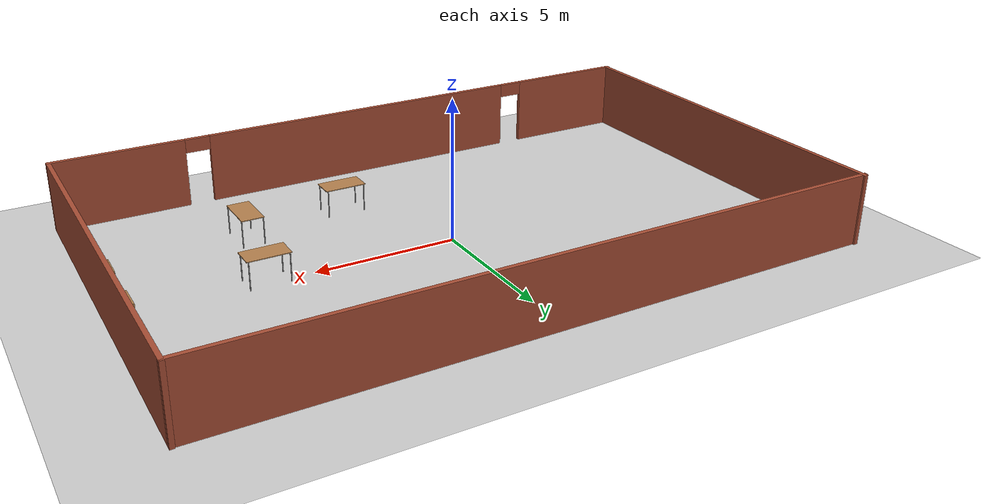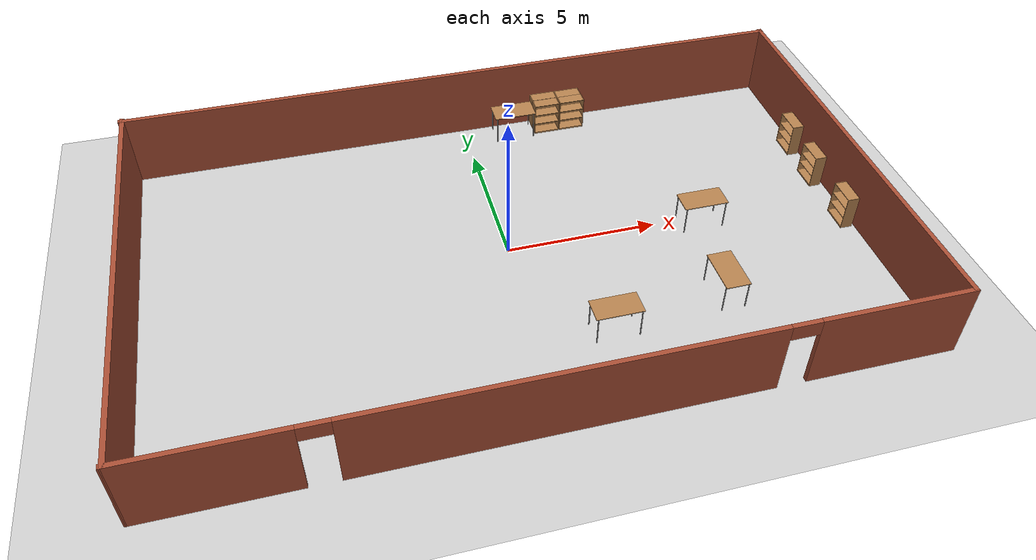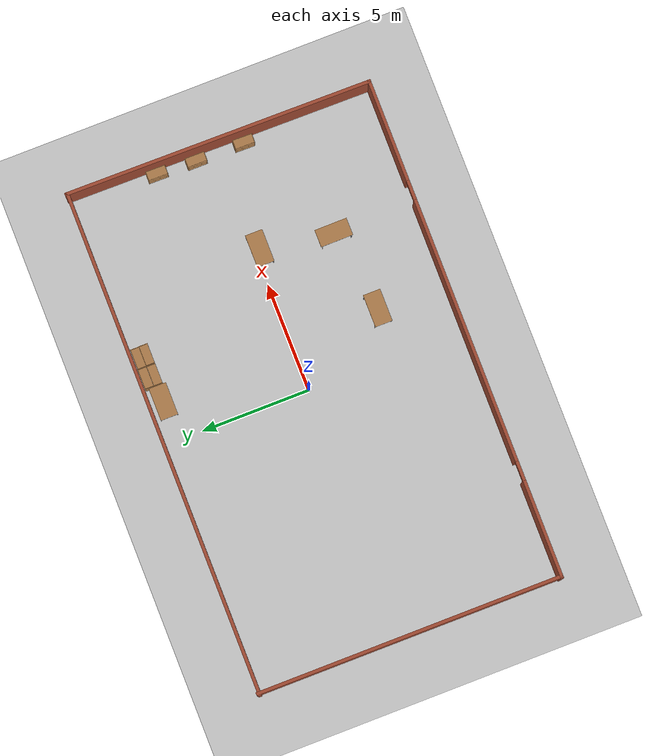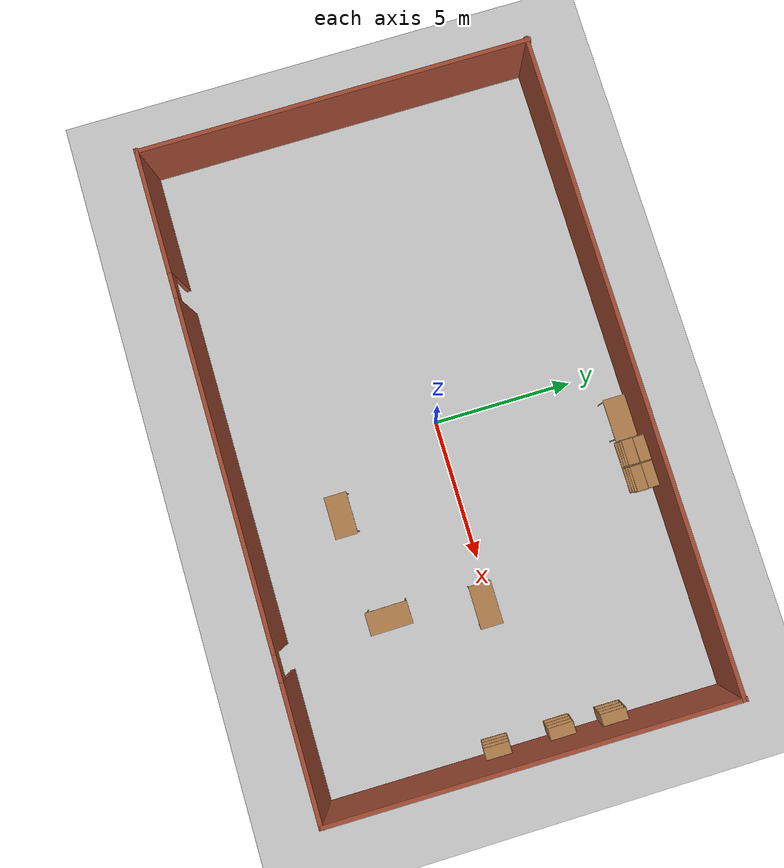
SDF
<sdf version="1.7">
 <world name="default">
  <model name="ground_plane">
   <static>1</static>
   <link name="link">
    <collision name="collision">
     <geometry><plane><normal>0 0 1</normal><size>100 100</size></plane></geometry>
     <surface><friction><ode><mu>100</mu><mu2>50</mu2></ode></friction></surface>
    </collision>
    <visual name="visual">
     <cast_shadows>0</cast_shadows>
     <geometry><plane><normal>0 0 1</normal><size>100 100</size></plane></geometry>
     <material>
      <script><uri>file://media/materials/scripts/gazebo.material</uri><name>Gazebo/Grey</name></script>
     </material>
    </visual>
   </link>
  </model>
  <model name="lab_experimental">
   <pose>-0.043326 -0.210443 0 0 -0 0</pose>
   <link name="Wall_0">
    <collision name="Wall_0_Collision">
     <geometry><box><size>23.5 0.15 2.5</size></box></geometry>
     <pose>0 0 1.25 0 -0 0</pose>
    </collision>
    <visual name="Wall_0_Visual">
     <pose>0 0 1.25 0 -0 0</pose>
     <geometry><box><size>23.5 0.15 2.5</size></box></geometry>
     <material>
      <script><uri>file://media/materials/scripts/gazebo.material</uri><name>Gazebo/Bricks</name></script>
      <ambient>1 1 1 1</ambient>
     </material>
     <meta><layer>0</layer></meta>
    </visual>
    <pose>-0.000322 7.01118 0 0 -0 0</pose>
   </link>
   <link name="Wall_1">
    <collision name="Wall_1_Collision">
     <geometry><box><size>14.2319 0.15 2.5</size></box></geometry>
     <pose>0 0 1.25 0 -0 0</pose>
    </collision>
    <visual name="Wall_1_Visual">
     <pose>0 0 1.25 0 -0 0</pose>
     <geometry><box><size>14.2319 0.15 2.5</size></box></geometry>
     <material>
      <script><uri>file://media/materials/scripts/gazebo.material</uri><name>Gazebo/Bricks</name></script>
      <ambient>1 1 1 1</ambient>
     </material>
     <meta><layer>0</layer></meta>
    </visual>
    <pose>11.614 0.010965 0 0 -0 -1.57942</pose>
   </link>
   <link name="Wall_2">
    <pose>-0.053739 -7.04993 0 0 -0 3.13985</pose>
    <visual name="Wall_2_Visual_0">
     <pose>-9.30831 0 1.25 0 -0 0</pose>
     <geometry><box><size>4.74763 0.15 2.5</size></box></geometry>
     <material>
      <script><uri>file://media/materials/scripts/gazebo.material</uri><name>Gazebo/Bricks</name></script>
      <ambient>1 1 1 1</ambient>
     </material>
     <meta><layer>0</layer></meta>
    </visual>
    <collision name="Wall_2_Collision_0">
     <geometry><box><size>4.74763 0.15 2.5</size></box></geometry>
     <pose>-9.30831 0 1.25 0 -0 0</pose>
    </collision>
    <visual name="Wall_2_Visual_1">
     <pose>0.091294 0 1.25 0 -0 0</pose>
     <geometry><box><size>12.2516 0.15 2.5</size></box></geometry>
     <material>
      <script><uri>file://media/materials/scripts/gazebo.material</uri><name>Gazebo/Bricks</name></script>
      <ambient>1 1 1 1</ambient>
     </material>
     <meta><layer>0</layer></meta>
    </visual>
    <collision name="Wall_2_Collision_1">
     <geometry><box><size>12.2516 0.15 2.5</size></box></geometry>
     <pose>0.091294 0 1.25 0 -0 0</pose>
    </collision>
    <visual name="Wall_2_Visual_2">
     <pose>9.3996 0 1.25 0 -0 0</pose>
     <geometry><box><size>4.56504 0.15 2.5</size></box></geometry>
     <material>
      <script><uri>file://media/materials/scripts/gazebo.material</uri><name>Gazebo/Bricks</name></script>
      <ambient>1 1 1 1</ambient>
     </material>
     <meta><layer>0</layer></meta>
    </visual>
    <collision name="Wall_2_Collision_2">
     <geometry><box><size>4.56504 0.15 2.5</size></box></geometry>
     <pose>9.3996 0 1.25 0 -0 0</pose>
    </collision>
    <visual name="Wall_2_Visual_3">
     <pose>-6.48449 0 2.25 0 -0 0</pose>
     <geometry><box><size>0.9 0.15 0.5</size></box></geometry>
     <material>
      <script><uri>file://media/materials/scripts/gazebo.material</uri><name>Gazebo/Bricks</name></script>
      <ambient>1 1 1 1</ambient>
     </material>
     <meta><layer>0</layer></meta>
    </visual>
    <collision name="Wall_2_Collision_3">
     <geometry><box><size>0.9 0.15 0.5</size></box></geometry>
     <pose>-6.48449 0 2.25 0 -0 0</pose>
    </collision>
    <visual name="Wall_2_Visual_4">
     <pose>6.66708 0 2.25 0 -0 0</pose>
     <geometry><box><size>0.9 0.15 0.5</size></box></geometry>
     <material>
      <script><uri>file://media/materials/scripts/gazebo.material</uri><name>Gazebo/Bricks</name></script>
      <ambient>1 1 1 1</ambient>
     </material>
     <meta><layer>0</layer></meta>
    </visual>
    <collision name="Wall_2_Collision_4">
     <geometry><box><size>0.9 0.15 0.5</size></box></geometry>
     <pose>6.66708 0 2.25 0 -0 0</pose>
    </collision>
   </link>
   <link name="Wall_3">
    <collision name="Wall_3_Collision">
     <geometry><box><size>14.25 0.15 2.5</size></box></geometry>
     <pose>0 0 1.25 0 -0 0</pose>
    </collision>
    <visual name="Wall_3_Visual">
     <pose>0 0 1.25 0 -0 0</pose>
     <geometry><box><size>14.25 0.15 2.5</size></box></geometry>
     <material>
      <script><uri>file://media/materials/scripts/gazebo.material</uri><name>Gazebo/Bricks</name></script>
      <ambient>1 1 1 1</ambient>
     </material>
     <meta><layer>0</layer></meta>
    </visual>
    <pose>-11.6203 0.020293 0 0 -0 1.5708</pose>
   </link>
   <static>1</static>
  </model>
  <model name="bookshelf_clone">
   <static>1</static>
   <link name="link">
    <inertial><mass>1</mass></inertial>
    <collision name="back">
     <pose>0 0.005 0.6 0 -0 0</pose>
     <geometry><box><size>0.9 0.01 1.2</size></box></geometry>
    </collision>
    <visual name="visual1">
     <pose>0 0.005 0.6 0 -0 0</pose>
     <geometry><box><size>0.9 0.01 1.2</size></box></geometry>
     <material>
      <script><uri>file://media/materials/scripts/gazebo.material</uri><name>Gazebo/Wood</name></script>
     </material>
    </visual>
    <collision name="left_side">
     <pose>0.45 -0.195 0.6 0 -0 0</pose>
     <geometry><box><size>0.02 0.4 1.2</size></box></geometry>
    </collision>
    <visual name="visual2">
     <pose>0.45 -0.195 0.6 0 -0 0</pose>
     <geometry><box><size>0.02 0.4 1.2</size></box></geometry>
     <material>
      <script><uri>file://media/materials/scripts/gazebo.material</uri><name>Gazebo/Wood</name></script>
     </material>
    </visual>
    <collision name="right_side">
     <pose>-0.45 -0.195 0.6 0 -0 0</pose>
     <geometry><box><size>0.02 0.4 1.2</size></box></geometry>
    </collision>
    <visual name="visual3">
     <pose>-0.45 -0.195 0.6 0 -0 0</pose>
     <geometry><box><size>0.02 0.4 1.2</size></box></geometry>
     <material>
      <script><uri>file://media/materials/scripts/gazebo.material</uri><name>Gazebo/Wood</name></script>
     </material>
    </visual>
    <collision name="bottom">
     <pose>0 -0.195 0.03 0 -0 0</pose>
     <geometry><box><size>0.88 0.4 0.06</size></box></geometry>
    </collision>
    <visual name="visual4">
     <pose>0 -0.195 0.03 0 -0 0</pose>
     <geometry><box><size>0.88 0.4 0.06</size></box></geometry>
     <material>
      <script><uri>file://media/materials/scripts/gazebo.material</uri><name>Gazebo/Wood</name></script>
     </material>
    </visual>
    <collision name="top">
     <pose>0 -0.195 1.19 0 -0 0</pose>
     <geometry><box><size>0.88 0.4 0.02</size></box></geometry>
    </collision>
    <visual name="visual5">
     <pose>0 -0.195 1.19 0 -0 0</pose>
     <geometry><box><size>0.88 0.4 0.02</size></box></geometry>
     <material>
      <script><uri>file://media/materials/scripts/gazebo.material</uri><name>Gazebo/Wood</name></script>
     </material>
    </visual>
    <collision name="low_shelf">
     <pose>0 -0.195 0.43 0 -0 0</pose>
     <geometry><box><size>0.88 0.4 0.02</size></box></geometry>
    </collision>
    <visual name="visual6">
     <pose>0 -0.195 0.43 0 -0 0</pose>
     <geometry><box><size>0.88 0.4 0.02</size></box></geometry>
     <material>
      <script><uri>file://media/materials/scripts/gazebo.material</uri><name>Gazebo/Wood</name></script>
     </material>
    </visual>
    <collision name="high_shelf">
     <pose>0 -0.195 0.8 0 -0 0</pose>
     <geometry><box><size>0.88 0.4 0.02</size></box></geometry>
    </collision>
    <visual name="visual7">
     <pose>0 -0.195 0.8 0 -0 0</pose>
     <geometry><box><size>0.88 0.4 0.02</size></box></geometry>
     <material>
      <script><uri>file://media/materials/scripts/gazebo.material</uri><name>Gazebo/Wood</name></script>
     </material>
    </visual>
   </link>
   <pose>11.3923 -1.25194 0 0 0 -1.58716</pose>
  </model>
  <model name="bookshelf_clone_0">
   <static>1</static>
   <link name="link">
    <inertial><mass>1</mass></inertial>
    <collision name="back">
     <pose>0 0.005 0.6 0 -0 0</pose>
     <geometry><box><size>0.9 0.01 1.2</size></box></geometry>
    </collision>
    <visual name="visual1">
     <pose>0 0.005 0.6 0 -0 0</pose>
     <geometry><box><size>0.9 0.01 1.2</size></box></geometry>
     <material>
      <script><uri>file://media/materials/scripts/gazebo.material</uri><name>Gazebo/Wood</name></script>
     </material>
    </visual>
    <collision name="left_side">
     <pose>0.45 -0.195 0.6 0 -0 0</pose>
     <geometry><box><size>0.02 0.4 1.2</size></box></geometry>
    </collision>
    <visual name="visual2">
     <pose>0.45 -0.195 0.6 0 -0 0</pose>
     <geometry><box><size>0.02 0.4 1.2</size></box></geometry>
     <material>
      <script><uri>file://media/materials/scripts/gazebo.material</uri><name>Gazebo/Wood</name></script>
     </material>
    </visual>
    <collision name="right_side">
     <pose>-0.45 -0.195 0.6 0 -0 0</pose>
     <geometry><box><size>0.02 0.4 1.2</size></box></geometry>
    </collision>
    <visual name="visual3">
     <pose>-0.45 -0.195 0.6 0 -0 0</pose>
     <geometry><box><size>0.02 0.4 1.2</size></box></geometry>
     <material>
      <script><uri>file://media/materials/scripts/gazebo.material</uri><name>Gazebo/Wood</name></script>
     </material>
    </visual>
    <collision name="bottom">
     <pose>0 -0.195 0.03 0 -0 0</pose>
     <geometry><box><size>0.88 0.4 0.06</size></box></geometry>
    </collision>
    <visual name="visual4">
     <pose>0 -0.195 0.03 0 -0 0</pose>
     <geometry><box><size>0.88 0.4 0.06</size></box></geometry>
     <material>
      <script><uri>file://media/materials/scripts/gazebo.material</uri><name>Gazebo/Wood</name></script>
     </material>
    </visual>
    <collision name="top">
     <pose>0 -0.195 1.19 0 -0 0</pose>
     <geometry><box><size>0.88 0.4 0.02</size></box></geometry>
    </collision>
    <visual name="visual5">
     <pose>0 -0.195 1.19 0 -0 0</pose>
     <geometry><box><size>0.88 0.4 0.02</size></box></geometry>
     <material>
      <script><uri>file://media/materials/scripts/gazebo.material</uri><name>Gazebo/Wood</name></script>
     </material>
    </visual>
    <collision name="low_shelf">
     <pose>0 -0.195 0.43 0 -0 0</pose>
     <geometry><box><size>0.88 0.4 0.02</size></box></geometry>
    </collision>
    <visual name="visual6">
     <pose>0 -0.195 0.43 0 -0 0</pose>
     <geometry><box><size>0.88 0.4 0.02</size></box></geometry>
     <material>
      <script><uri>file://media/materials/scripts/gazebo.material</uri><name>Gazebo/Wood</name></script>
     </material>
    </visual>
    <collision name="high_shelf">
     <pose>0 -0.195 0.8 0 -0 0</pose>
     <geometry><box><size>0.88 0.4 0.02</size></box></geometry>
    </collision>
    <visual name="visual7">
     <pose>0 -0.195 0.8 0 -0 0</pose>
     <geometry><box><size>0.88 0.4 0.02</size></box></geometry>
     <material>
      <script><uri>file://media/materials/scripts/gazebo.material</uri><name>Gazebo/Wood</name></script>
     </material>
    </visual>
   </link>
   <pose>11.3961 0.993662 0 0 0 -1.57121</pose>
  </model>
  <model name="bookshelf_clone_1">
   <static>1</static>
   <link name="link">
    <inertial><mass>1</mass></inertial>
    <collision name="back">
     <pose>0 0.005 0.6 0 -0 0</pose>
     <geometry><box><size>0.9 0.01 1.2</size></box></geometry>
    </collision>
    <visual name="visual1">
     <pose>0 0.005 0.6 0 -0 0</pose>
     <geometry><box><size>0.9 0.01 1.2</size></box></geometry>
     <material>
      <script><uri>file://media/materials/scripts/gazebo.material</uri><name>Gazebo/Wood</name></script>
     </material>
    </visual>
    <collision name="left_side">
     <pose>0.45 -0.195 0.6 0 -0 0</pose>
     <geometry><box><size>0.02 0.4 1.2</size></box></geometry>
    </collision>
    <visual name="visual2">
     <pose>0.45 -0.195 0.6 0 -0 0</pose>
     <geometry><box><size>0.02 0.4 1.2</size></box></geometry>
     <material>
      <script><uri>file://media/materials/scripts/gazebo.material</uri><name>Gazebo/Wood</name></script>
     </material>
    </visual>
    <collision name="right_side">
     <pose>-0.45 -0.195 0.6 0 -0 0</pose>
     <geometry><box><size>0.02 0.4 1.2</size></box></geometry>
    </collision>
    <visual name="visual3">
     <pose>-0.45 -0.195 0.6 0 -0 0</pose>
     <geometry><box><size>0.02 0.4 1.2</size></box></geometry>
     <material>
      <script><uri>file://media/materials/scripts/gazebo.material</uri><name>Gazebo/Wood</name></script>
     </material>
    </visual>
    <collision name="bottom">
     <pose>0 -0.195 0.03 0 -0 0</pose>
     <geometry><box><size>0.88 0.4 0.06</size></box></geometry>
    </collision>
    <visual name="visual4">
     <pose>0 -0.195 0.03 0 -0 0</pose>
     <geometry><box><size>0.88 0.4 0.06</size></box></geometry>
     <material>
      <script><uri>file://media/materials/scripts/gazebo.material</uri><name>Gazebo/Wood</name></script>
     </material>
    </visual>
    <collision name="top">
     <pose>0 -0.195 1.19 0 -0 0</pose>
     <geometry><box><size>0.88 0.4 0.02</size></box></geometry>
    </collision>
    <visual name="visual5">
     <pose>0 -0.195 1.19 0 -0 0</pose>
     <geometry><box><size>0.88 0.4 0.02</size></box></geometry>
     <material>
      <script><uri>file://media/materials/scripts/gazebo.material</uri><name>Gazebo/Wood</name></script>
     </material>
    </visual>
    <collision name="low_shelf">
     <pose>0 -0.195 0.43 0 -0 0</pose>
     <geometry><box><size>0.88 0.4 0.02</size></box></geometry>
    </collision>
    <visual name="visual6">
     <pose>0 -0.195 0.43 0 -0 0</pose>
     <geometry><box><size>0.88 0.4 0.02</size></box></geometry>
     <material>
      <script><uri>file://media/materials/scripts/gazebo.material</uri><name>Gazebo/Wood</name></script>
     </material>
    </visual>
    <collision name="high_shelf">
     <pose>0 -0.195 0.8 0 -0 0</pose>
     <geometry><box><size>0.88 0.4 0.02</size></box></geometry>
    </collision>
    <visual name="visual7">
     <pose>0 -0.195 0.8 0 -0 0</pose>
     <geometry><box><size>0.88 0.4 0.02</size></box></geometry>
     <material>
      <script><uri>file://media/materials/scripts/gazebo.material</uri><name>Gazebo/Wood</name></script>
     </material>
    </visual>
   </link>
   <pose>11.4656 2.81029 0 0 0 -1.58232</pose>
  </model>
  <model name="table_clone_clone_1">
   <static>1</static>
   <link name="link">
    <collision name="surface">
     <pose>0 0 1 0 -0 0</pose>
     <geometry><box><size>1.5 0.8 0.03</size></box></geometry>
     <surface><friction><ode><mu>0.6</mu><mu2>0.6</mu2></ode></friction></surface>
    </collision>
    <visual name="visual1">
     <pose>0 0 1 0 -0 0</pose>
     <geometry><box><size>1.5 0.8 0.03</size></box></geometry>
     <material>
      <script><uri>file://media/materials/scripts/gazebo.material</uri><name>Gazebo/Wood</name></script>
     </material>
    </visual>
    <collision name="front_left_leg">
     <pose>0.68 0.38 0.5 0 -0 0</pose>
     <geometry><cylinder><radius>0.02</radius><length>1</length></cylinder></geometry>
    </collision>
    <visual name="front_left_leg">
     <pose>0.68 0.38 0.5 0 -0 0</pose>
     <geometry><cylinder><radius>0.02</radius><length>1</length></cylinder></geometry>
     <material>
      <script><uri>file://media/materials/scripts/gazebo.material</uri><name>Gazebo/Grey</name></script>
     </material>
    </visual>
    <collision name="front_right_leg">
     <pose>0.68 -0.38 0.5 0 -0 0</pose>
     <geometry><cylinder><radius>0.02</radius><length>1</length></cylinder></geometry>
    </collision>
    <visual name="front_right_leg">
     <pose>0.68 -0.38 0.5 0 -0 0</pose>
     <geometry><cylinder><radius>0.02</radius><length>1</length></cylinder></geometry>
     <material>
      <script><uri>file://media/materials/scripts/gazebo.material</uri><name>Gazebo/Grey</name></script>
     </material>
    </visual>
    <collision name="back_right_leg">
     <pose>-0.68 -0.38 0.5 0 -0 0</pose>
     <geometry><cylinder><radius>0.02</radius><length>1</length></cylinder></geometry>
    </collision>
    <visual name="back_right_leg">
     <pose>-0.68 -0.38 0.5 0 -0 0</pose>
     <geometry><cylinder><radius>0.02</radius><length>1</length></cylinder></geometry>
     <material>
      <script><uri>file://media/materials/scripts/gazebo.material</uri><name>Gazebo/Grey</name></script>
     </material>
    </visual>
    <collision name="back_left_leg">
     <pose>-0.68 0.38 0.5 0 -0 0</pose>
     <geometry><cylinder><radius>0.02</radius><length>1</length></cylinder></geometry>
    </collision>
    <visual name="back_left_leg">
     <pose>-0.68 0.38 0.5 0 -0 0</pose>
     <geometry><cylinder><radius>0.02</radius><length>1</length></cylinder></geometry>
     <material>
      <script><uri>file://media/materials/scripts/gazebo.material</uri><name>Gazebo/Grey</name></script>
     </material>
    </visual>
   </link>
   <pose>6.02324 -3.50357 0 0 0 -1.56352</pose>
  </model>
  <model name="bookshelf_2_clone">
   <static>1</static>
   <link name="link">
    <inertial><mass>1</mass></inertial>
    <collision name="back">
     <pose>0 0.005 0.6 0 -0 0</pose>
     <geometry><box><size>0.9 0.01 1.2</size></box></geometry>
    </collision>
    <visual name="visual1">
     <pose>0 0.005 0.6 0 -0 0</pose>
     <geometry><box><size>0.9 0.01 1.2</size></box></geometry>
     <material>
      <script><uri>file://media/materials/scripts/gazebo.material</uri><name>Gazebo/Wood</name></script>
     </material>
    </visual>
    <collision name="left_side">
     <pose>0.45 -0.195 0.6 0 -0 0</pose>
     <geometry><box><size>0.02 0.4 1.2</size></box></geometry>
    </collision>
    <visual name="visual2">
     <pose>0.45 -0.195 0.6 0 -0 0</pose>
     <geometry><box><size>0.02 0.4 1.2</size></box></geometry>
     <material>
      <script><uri>file://media/materials/scripts/gazebo.material</uri><name>Gazebo/Wood</name></script>
     </material>
    </visual>
    <collision name="right_side">
     <pose>-0.45 -0.195 0.6 0 -0 0</pose>
     <geometry><box><size>0.02 0.4 1.2</size></box></geometry>
    </collision>
    <visual name="visual3">
     <pose>-0.45 -0.195 0.6 0 -0 0</pose>
     <geometry><box><size>0.02 0.4 1.2</size></box></geometry>
     <material>
      <script><uri>file://media/materials/scripts/gazebo.material</uri><name>Gazebo/Wood</name></script>
     </material>
    </visual>
    <collision name="bottom">
     <pose>0 -0.195 0.03 0 -0 0</pose>
     <geometry><box><size>0.88 0.4 0.06</size></box></geometry>
    </collision>
    <visual name="visual4">
     <pose>0 -0.195 0.03 0 -0 0</pose>
     <geometry><box><size>0.88 0.4 0.06</size></box></geometry>
     <material>
      <script><uri>file://media/materials/scripts/gazebo.material</uri><name>Gazebo/Wood</name></script>
     </material>
    </visual>
    <collision name="top">
     <pose>0 -0.195 1.19 0 -0 0</pose>
     <geometry><box><size>0.88 0.4 0.02</size></box></geometry>
    </collision>
    <visual name="visual5">
     <pose>0 -0.195 1.19 0 -0 0</pose>
     <geometry><box><size>0.88 0.4 0.02</size></box></geometry>
     <material>
      <script><uri>file://media/materials/scripts/gazebo.material</uri><name>Gazebo/Wood</name></script>
     </material>
    </visual>
    <collision name="low_shelf">
     <pose>0 -0.195 0.43 0 -0 0</pose>
     <geometry><box><size>0.88 0.4 0.02</size></box></geometry>
    </collision>
    <visual name="visual6">
     <pose>0 -0.195 0.43 0 -0 0</pose>
     <geometry><box><size>0.88 0.4 0.02</size></box></geometry>
     <material>
      <script><uri>file://media/materials/scripts/gazebo.material</uri><name>Gazebo/Wood</name></script>
     </material>
    </visual>
    <collision name="high_shelf">
     <pose>0 -0.195 0.8 0 -0 0</pose>
     <geometry><box><size>0.88 0.4 0.02</size></box></geometry>
    </collision>
    <visual name="visual7">
     <pose>0 -0.195 0.8 0 -0 0</pose>
     <geometry><box><size>0.88 0.4 0.02</size></box></geometry>
     <material>
      <script><uri>file://media/materials/scripts/gazebo.material</uri><name>Gazebo/Wood</name></script>
     </material>
    </visual>
   </link>
   <pose>2.99493 6.69161 0 0 -0 0</pose>
  </model>
  <model name="bookshelf_2_clone_0">
   <static>1</static>
   <link name="link">
    <inertial><mass>1</mass></inertial>
    <collision name="back">
     <pose>0 0.005 0.6 0 -0 0</pose>
     <geometry><box><size>0.9 0.01 1.2</size></box></geometry>
    </collision>
    <visual name="visual1">
     <pose>0 0.005 0.6 0 -0 0</pose>
     <geometry><box><size>0.9 0.01 1.2</size></box></geometry>
     <material>
      <script><uri>file://media/materials/scripts/gazebo.material</uri><name>Gazebo/Wood</name></script>
     </material>
    </visual>
    <collision name="left_side">
     <pose>0.45 -0.195 0.6 0 -0 0</pose>
     <geometry><box><size>0.02 0.4 1.2</size></box></geometry>
    </collision>
    <visual name="visual2">
     <pose>0.45 -0.195 0.6 0 -0 0</pose>
     <geometry><box><size>0.02 0.4 1.2</size></box></geometry>
     <material>
      <script><uri>file://media/materials/scripts/gazebo.material</uri><name>Gazebo/Wood</name></script>
     </material>
    </visual>
    <collision name="right_side">
     <pose>-0.45 -0.195 0.6 0 -0 0</pose>
     <geometry><box><size>0.02 0.4 1.2</size></box></geometry>
    </collision>
    <visual name="visual3">
     <pose>-0.45 -0.195 0.6 0 -0 0</pose>
     <geometry><box><size>0.02 0.4 1.2</size></box></geometry>
     <material>
      <script><uri>file://media/materials/scripts/gazebo.material</uri><name>Gazebo/Wood</name></script>
     </material>
    </visual>
    <collision name="bottom">
     <pose>0 -0.195 0.03 0 -0 0</pose>
     <geometry><box><size>0.88 0.4 0.06</size></box></geometry>
    </collision>
    <visual name="visual4">
     <pose>0 -0.195 0.03 0 -0 0</pose>
     <geometry><box><size>0.88 0.4 0.06</size></box></geometry>
     <material>
      <script><uri>file://media/materials/scripts/gazebo.material</uri><name>Gazebo/Wood</name></script>
     </material>
    </visual>
    <collision name="top">
     <pose>0 -0.195 1.19 0 -0 0</pose>
     <geometry><box><size>0.88 0.4 0.02</size></box></geometry>
    </collision>
    <visual name="visual5">
     <pose>0 -0.195 1.19 0 -0 0</pose>
     <geometry><box><size>0.88 0.4 0.02</size></box></geometry>
     <material>
      <script><uri>file://media/materials/scripts/gazebo.material</uri><name>Gazebo/Wood</name></script>
     </material>
    </visual>
    <collision name="low_shelf">
     <pose>0 -0.195 0.43 0 -0 0</pose>
     <geometry><box><size>0.88 0.4 0.02</size></box></geometry>
    </collision>
    <visual name="visual6">
     <pose>0 -0.195 0.43 0 -0 0</pose>
     <geometry><box><size>0.88 0.4 0.02</size></box></geometry>
     <material>
      <script><uri>file://media/materials/scripts/gazebo.material</uri><name>Gazebo/Wood</name></script>
     </material>
    </visual>
    <collision name="high_shelf">
     <pose>0 -0.195 0.8 0 -0 0</pose>
     <geometry><box><size>0.88 0.4 0.02</size></box></geometry>
    </collision>
    <visual name="visual7">
     <pose>0 -0.195 0.8 0 -0 0</pose>
     <geometry><box><size>0.88 0.4 0.02</size></box></geometry>
     <material>
      <script><uri>file://media/materials/scripts/gazebo.material</uri><name>Gazebo/Wood</name></script>
     </material>
    </visual>
   </link>
   <pose>2.99049 6.27829 0 0 -0 0</pose>
  </model>
  <model name="bookshelf_2_clone_1">
   <static>1</static>
   <link name="link">
    <inertial><mass>1</mass></inertial>
    <collision name="back">
     <pose>0 0.005 0.6 0 -0 0</pose>
     <geometry><box><size>0.9 0.01 1.2</size></box></geometry>
    </collision>
    <visual name="visual1">
     <pose>0 0.005 0.6 0 -0 0</pose>
     <geometry><box><size>0.9 0.01 1.2</size></box></geometry>
     <material>
      <script><uri>file://media/materials/scripts/gazebo.material</uri><name>Gazebo/Wood</name></script>
     </material>
    </visual>
    <collision name="left_side">
     <pose>0.45 -0.195 0.6 0 -0 0</pose>
     <geometry><box><size>0.02 0.4 1.2</size></box></geometry>
    </collision>
    <visual name="visual2">
     <pose>0.45 -0.195 0.6 0 -0 0</pose>
     <geometry><box><size>0.02 0.4 1.2</size></box></geometry>
     <material>
      <script><uri>file://media/materials/scripts/gazebo.material</uri><name>Gazebo/Wood</name></script>
     </material>
    </visual>
    <collision name="right_side">
     <pose>-0.45 -0.195 0.6 0 -0 0</pose>
     <geometry><box><size>0.02 0.4 1.2</size></box></geometry>
    </collision>
    <visual name="visual3">
     <pose>-0.45 -0.195 0.6 0 -0 0</pose>
     <geometry><box><size>0.02 0.4 1.2</size></box></geometry>
     <material>
      <script><uri>file://media/materials/scripts/gazebo.material</uri><name>Gazebo/Wood</name></script>
     </material>
    </visual>
    <collision name="bottom">
     <pose>0 -0.195 0.03 0 -0 0</pose>
     <geometry><box><size>0.88 0.4 0.06</size></box></geometry>
    </collision>
    <visual name="visual4">
     <pose>0 -0.195 0.03 0 -0 0</pose>
     <geometry><box><size>0.88 0.4 0.06</size></box></geometry>
     <material>
      <script><uri>file://media/materials/scripts/gazebo.material</uri><name>Gazebo/Wood</name></script>
     </material>
    </visual>
    <collision name="top">
     <pose>0 -0.195 1.19 0 -0 0</pose>
     <geometry><box><size>0.88 0.4 0.02</size></box></geometry>
    </collision>
    <visual name="visual5">
     <pose>0 -0.195 1.19 0 -0 0</pose>
     <geometry><box><size>0.88 0.4 0.02</size></box></geometry>
     <material>
      <script><uri>file://media/materials/scripts/gazebo.material</uri><name>Gazebo/Wood</name></script>
     </material>
    </visual>
    <collision name="low_shelf">
     <pose>0 -0.195 0.43 0 -0 0</pose>
     <geometry><box><size>0.88 0.4 0.02</size></box></geometry>
    </collision>
    <visual name="visual6">
     <pose>0 -0.195 0.43 0 -0 0</pose>
     <geometry><box><size>0.88 0.4 0.02</size></box></geometry>
     <material>
      <script><uri>file://media/materials/scripts/gazebo.material</uri><name>Gazebo/Wood</name></script>
     </material>
    </visual>
    <collision name="high_shelf">
     <pose>0 -0.195 0.8 0 -0 0</pose>
     <geometry><box><size>0.88 0.4 0.02</size></box></geometry>
    </collision>
    <visual name="visual7">
     <pose>0 -0.195 0.8 0 -0 0</pose>
     <geometry><box><size>0.88 0.4 0.02</size></box></geometry>
     <material>
      <script><uri>file://media/materials/scripts/gazebo.material</uri><name>Gazebo/Wood</name></script>
     </material>
    </visual>
   </link>
   <pose>3.92463 6.68174 0 0 -0 0</pose>
  </model>
  <model name="bookshelf_2_clone_2">
   <static>1</static>
   <link name="link">
    <inertial><mass>1</mass></inertial>
    <collision name="back">
     <pose>0 0.005 0.6 0 -0 0</pose>
     <geometry><box><size>0.9 0.01 1.2</size></box></geometry>
    </collision>
    <visual name="visual1">
     <pose>0 0.005 0.6 0 -0 0</pose>
     <geometry><box><size>0.9 0.01 1.2</size></box></geometry>
     <material>
      <script><uri>file://media/materials/scripts/gazebo.material</uri><name>Gazebo/Wood</name></script>
     </material>
    </visual>
    <collision name="left_side">
     <pose>0.45 -0.195 0.6 0 -0 0</pose>
     <geometry><box><size>0.02 0.4 1.2</size></box></geometry>
    </collision>
    <visual name="visual2">
     <pose>0.45 -0.195 0.6 0 -0 0</pose>
     <geometry><box><size>0.02 0.4 1.2</size></box></geometry>
     <material>
      <script><uri>file://media/materials/scripts/gazebo.material</uri><name>Gazebo/Wood</name></script>
     </material>
    </visual>
    <collision name="right_side">
     <pose>-0.45 -0.195 0.6 0 -0 0</pose>
     <geometry><box><size>0.02 0.4 1.2</size></box></geometry>
    </collision>
    <visual name="visual3">
     <pose>-0.45 -0.195 0.6 0 -0 0</pose>
     <geometry><box><size>0.02 0.4 1.2</size></box></geometry>
     <material>
      <script><uri>file://media/materials/scripts/gazebo.material</uri><name>Gazebo/Wood</name></script>
     </material>
    </visual>
    <collision name="bottom">
     <pose>0 -0.195 0.03 0 -0 0</pose>
     <geometry><box><size>0.88 0.4 0.06</size></box></geometry>
    </collision>
    <visual name="visual4">
     <pose>0 -0.195 0.03 0 -0 0</pose>
     <geometry><box><size>0.88 0.4 0.06</size></box></geometry>
     <material>
      <script><uri>file://media/materials/scripts/gazebo.material</uri><name>Gazebo/Wood</name></script>
     </material>
    </visual>
    <collision name="top">
     <pose>0 -0.195 1.19 0 -0 0</pose>
     <geometry><box><size>0.88 0.4 0.02</size></box></geometry>
    </collision>
    <visual name="visual5">
     <pose>0 -0.195 1.19 0 -0 0</pose>
     <geometry><box><size>0.88 0.4 0.02</size></box></geometry>
     <material>
      <script><uri>file://media/materials/scripts/gazebo.material</uri><name>Gazebo/Wood</name></script>
     </material>
    </visual>
    <collision name="low_shelf">
     <pose>0 -0.195 0.43 0 -0 0</pose>
     <geometry><box><size>0.88 0.4 0.02</size></box></geometry>
    </collision>
    <visual name="visual6">
     <pose>0 -0.195 0.43 0 -0 0</pose>
     <geometry><box><size>0.88 0.4 0.02</size></box></geometry>
     <material>
      <script><uri>file://media/materials/scripts/gazebo.material</uri><name>Gazebo/Wood</name></script>
     </material>
    </visual>
    <collision name="high_shelf">
     <pose>0 -0.195 0.8 0 -0 0</pose>
     <geometry><box><size>0.88 0.4 0.02</size></box></geometry>
    </collision>
    <visual name="visual7">
     <pose>0 -0.195 0.8 0 -0 0</pose>
     <geometry><box><size>0.88 0.4 0.02</size></box></geometry>
     <material>
      <script><uri>file://media/materials/scripts/gazebo.material</uri><name>Gazebo/Wood</name></script>
     </material>
    </visual>
   </link>
   <pose>3.93512 6.28301 0 0 -0 0</pose>
  </model>
  <model name="table_clone_0_clone">
   <static>1</static>
   <link name="link">
    <collision name="surface">
     <pose>0 0 1 0 -0 0</pose>
     <geometry><box><size>1.5 0.8 0.03</size></box></geometry>
     <surface><friction><ode><mu>0.6</mu><mu2>0.6</mu2></ode></friction></surface>
    </collision>
    <visual name="visual1">
     <pose>0 0 1 0 -0 0</pose>
     <geometry><box><size>1.5 0.8 0.03</size></box></geometry>
     <material>
      <script><uri>file://media/materials/scripts/gazebo.material</uri><name>Gazebo/Wood</name></script>
     </material>
    </visual>
    <collision name="front_left_leg">
     <pose>0.68 0.38 0.5 0 -0 0</pose>
     <geometry><cylinder><radius>0.02</radius><length>1</length></cylinder></geometry>
    </collision>
    <visual name="front_left_leg">
     <pose>0.68 0.38 0.5 0 -0 0</pose>
     <geometry><cylinder><radius>0.02</radius><length>1</length></cylinder></geometry>
     <material>
      <script><uri>file://media/materials/scripts/gazebo.material</uri><name>Gazebo/Grey</name></script>
     </material>
    </visual>
    <collision name="front_right_leg">
     <pose>0.68 -0.38 0.5 0 -0 0</pose>
     <geometry><cylinder><radius>0.02</radius><length>1</length></cylinder></geometry>
    </collision>
    <visual name="front_right_leg">
     <pose>0.68 -0.38 0.5 0 -0 0</pose>
     <geometry><cylinder><radius>0.02</radius><length>1</length></cylinder></geometry>
     <material>
      <script><uri>file://media/materials/scripts/gazebo.material</uri><name>Gazebo/Grey</name></script>
     </material>
    </visual>
    <collision name="back_right_leg">
     <pose>-0.68 -0.38 0.5 0 -0 0</pose>
     <geometry><cylinder><radius>0.02</radius><length>1</length></cylinder></geometry>
    </collision>
    <visual name="back_right_leg">
     <pose>-0.68 -0.38 0.5 0 -0 0</pose>
     <geometry><cylinder><radius>0.02</radius><length>1</length></cylinder></geometry>
     <material>
      <script><uri>file://media/materials/scripts/gazebo.material</uri><name>Gazebo/Grey</name></script>
     </material>
    </visual>
    <collision name="back_left_leg">
     <pose>-0.68 0.38 0.5 0 -0 0</pose>
     <geometry><cylinder><radius>0.02</radius><length>1</length></cylinder></geometry>
    </collision>
    <visual name="back_left_leg">
     <pose>-0.68 0.38 0.5 0 -0 0</pose>
     <geometry><cylinder><radius>0.02</radius><length>1</length></cylinder></geometry>
     <material>
      <script><uri>file://media/materials/scripts/gazebo.material</uri><name>Gazebo/Grey</name></script>
     </material>
    </visual>
   </link>
   <pose>1.76401 6.14363 0 0 -0 0</pose>
  </model>
  <model name="table_clone_2">
   <static>1</static>
   <link name="link">
    <collision name="surface">
     <pose>0 0 1 0 -0 0</pose>
     <geometry><box><size>1.5 0.8 0.03</size></box></geometry>
     <surface><friction><ode><mu>0.6</mu><mu2>0.6</mu2></ode></friction></surface>
    </collision>
    <visual name="visual1">
     <pose>0 0 1 0 -0 0</pose>
     <geometry><box><size>1.5 0.8 0.03</size></box></geometry>
     <material>
      <script><uri>file://media/materials/scripts/gazebo.material</uri><name>Gazebo/Wood</name></script>
     </material>
    </visual>
    <collision name="front_left_leg">
     <pose>0.68 0.38 0.5 0 -0 0</pose>
     <geometry><cylinder><radius>0.02</radius><length>1</length></cylinder></geometry>
    </collision>
    <visual name="front_left_leg">
     <pose>0.68 0.38 0.5 0 -0 0</pose>
     <geometry><cylinder><radius>0.02</radius><length>1</length></cylinder></geometry>
     <material>
      <script><uri>file://media/materials/scripts/gazebo.material</uri><name>Gazebo/Grey</name></script>
     </material>
    </visual>
    <collision name="front_right_leg">
     <pose>0.68 -0.38 0.5 0 -0 0</pose>
     <geometry><cylinder><radius>0.02</radius><length>1</length></cylinder></geometry>
    </collision>
    <visual name="front_right_leg">
     <pose>0.68 -0.38 0.5 0 -0 0</pose>
     <geometry><cylinder><radius>0.02</radius><length>1</length></cylinder></geometry>
     <material>
      <script><uri>file://media/materials/scripts/gazebo.material</uri><name>Gazebo/Grey</name></script>
     </material>
    </visual>
    <collision name="back_right_leg">
     <pose>-0.68 -0.38 0.5 0 -0 0</pose>
     <geometry><cylinder><radius>0.02</radius><length>1</length></cylinder></geometry>
    </collision>
    <visual name="back_right_leg">
     <pose>-0.68 -0.38 0.5 0 -0 0</pose>
     <geometry><cylinder><radius>0.02</radius><length>1</length></cylinder></geometry>
     <material>
      <script><uri>file://media/materials/scripts/gazebo.material</uri><name>Gazebo/Grey</name></script>
     </material>
    </visual>
    <collision name="back_left_leg">
     <pose>-0.68 0.38 0.5 0 -0 0</pose>
     <geometry><cylinder><radius>0.02</radius><length>1</length></cylinder></geometry>
    </collision>
    <visual name="back_left_leg">
     <pose>-0.68 0.38 0.5 0 -0 0</pose>
     <geometry><cylinder><radius>0.02</radius><length>1</length></cylinder></geometry>
     <material>
      <script><uri>file://media/materials/scripts/gazebo.material</uri><name>Gazebo/Grey</name></script>
     </material>
    </visual>
   </link>
   <pose>6.54366 -0.218018 0 0 -0 0</pose>
  </model>
  <model name="table_clone_3">
   <static>1</static>
   <link name="link">
    <collision name="surface">
     <pose>0 0 1 0 -0 0</pose>
     <geometry><box><size>1.5 0.8 0.03</size></box></geometry>
     <surface><friction><ode><mu>0.6</mu><mu2>0.6</mu2></ode></friction></surface>
    </collision>
    <visual name="visual1">
     <pose>0 0 1 0 -0 0</pose>
     <geometry><box><size>1.5 0.8 0.03</size></box></geometry>
     <material>
      <script><uri>file://media/materials/scripts/gazebo.material</uri><name>Gazebo/Wood</name></script>
     </material>
    </visual>
    <collision name="front_left_leg">
     <pose>0.68 0.38 0.5 0 -0 0</pose>
     <geometry><cylinder><radius>0.02</radius><length>1</length></cylinder></geometry>
    </collision>
    <visual name="front_left_leg">
     <pose>0.68 0.38 0.5 0 -0 0</pose>
     <geometry><cylinder><radius>0.02</radius><length>1</length></cylinder></geometry>
     <material>
      <script><uri>file://media/materials/scripts/gazebo.material</uri><name>Gazebo/Grey</name></script>
     </material>
    </visual>
    <collision name="front_right_leg">
     <pose>0.68 -0.38 0.5 0 -0 0</pose>
     <geometry><cylinder><radius>0.02</radius><length>1</length></cylinder></geometry>
    </collision>
    <visual name="front_right_leg">
     <pose>0.68 -0.38 0.5 0 -0 0</pose>
     <geometry><cylinder><radius>0.02</radius><length>1</length></cylinder></geometry>
     <material>
      <script><uri>file://media/materials/scripts/gazebo.material</uri><name>Gazebo/Grey</name></script>
     </material>
    </visual>
    <collision name="back_right_leg">
     <pose>-0.68 -0.38 0.5 0 -0 0</pose>
     <geometry><cylinder><radius>0.02</radius><length>1</length></cylinder></geometry>
    </collision>
    <visual name="back_right_leg">
     <pose>-0.68 -0.38 0.5 0 -0 0</pose>
     <geometry><cylinder><radius>0.02</radius><length>1</length></cylinder></geometry>
     <material>
      <script><uri>file://media/materials/scripts/gazebo.material</uri><name>Gazebo/Grey</name></script>
     </material>
    </visual>
    <collision name="back_left_leg">
     <pose>-0.68 0.38 0.5 0 -0 0</pose>
     <geometry><cylinder><radius>0.02</radius><length>1</length></cylinder></geometry>
    </collision>
    <visual name="back_left_leg">
     <pose>-0.68 0.38 0.5 0 -0 0</pose>
     <geometry><cylinder><radius>0.02</radius><length>1</length></cylinder></geometry>
     <material>
      <script><uri>file://media/materials/scripts/gazebo.material</uri><name>Gazebo/Grey</name></script>
     </material>
    </visual>
   </link>
   <pose>2.22125 -4.10198 0 0 -0 0</pose>
  </model>
 </world>
</sdf>
